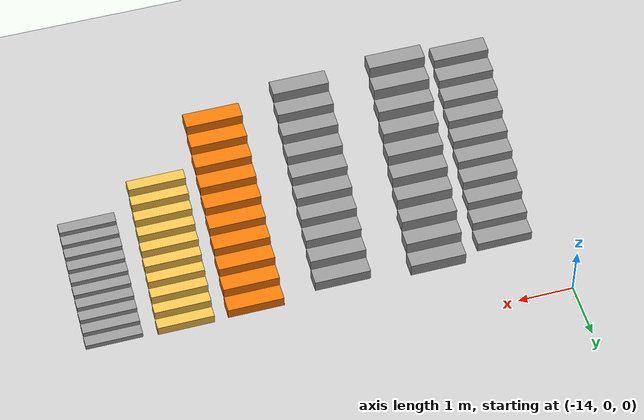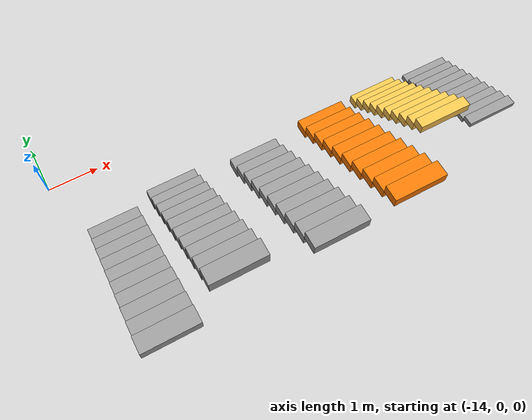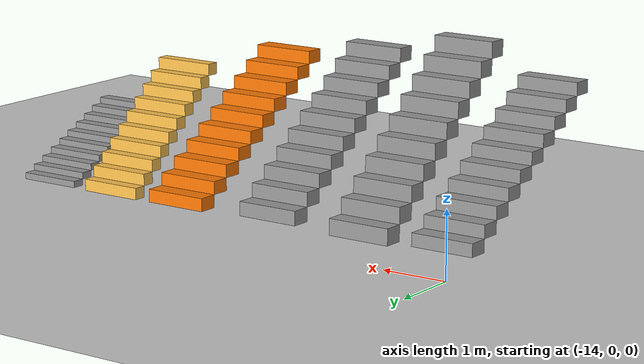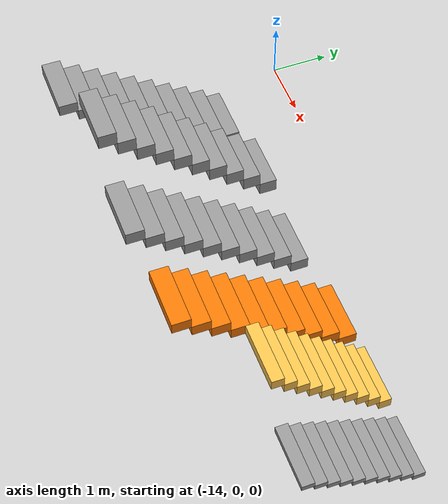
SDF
<sdf version="1.7">
 <world name="default">
  <model name="ground_plane">
   <static>1</static>
   <link name="link">
    <collision name="collision">
     <geometry><plane><normal>0 0 1</normal><size>100 100</size></plane></geometry>
     <surface>
      <contact><collide_bitmask>65535</collide_bitmask></contact>
      <friction><ode><mu>100</mu><mu2>50</mu2></ode></friction>
     </surface>
    </collision>
    <visual name="visual">
     <cast_shadows>0</cast_shadows>
     <geometry><plane><normal>0 0 1</normal><size>100 100</size></plane></geometry>
     <material>
      <script><uri>file://media/materials/scripts/gazebo.material</uri><name>Gazebo/Grey</name></script>
     </material>
    </visual>
   </link>
  </model>
  <model name="Untitled_0">
   <pose>-6.18408 -2.07983 0 0 -0 0</pose>
   <link name="Stairs_1">
    <visual name="Stairs_1_Visual_0">
     <pose>-2.38966 0.920514 0.1 0 -0 0</pose>
     <geometry><box><size>1 0.3 0.2</size></box></geometry>
     <material>
      <script><uri>file://media/materials/scripts/gazebo.material</uri><name>Gazebo/Grey</name></script>
      <ambient>0.996078 0.47451 0.0196078 1</ambient>
     </material>
     <meta><layer>0</layer></meta>
    </visual>
    <collision name="Stairs_1_Collision_0">
     <geometry><box><size>1 0.3 0.2</size></box></geometry>
     <pose>-2.38966 0.920514 0.1 0 -0 0</pose>
    </collision>
    <visual name="Stairs_1_Visual_1">
     <pose>-2.38966 0.620514 0.3 0 -0 0</pose>
     <geometry><box><size>1 0.3 0.2</size></box></geometry>
     <material>
      <script><uri>file://media/materials/scripts/gazebo.material</uri><name>Gazebo/Grey</name></script>
      <ambient>0.996078 0.47451 0.0196078 1</ambient>
     </material>
     <meta><layer>0</layer></meta>
    </visual>
    <collision name="Stairs_1_Collision_1">
     <geometry><box><size>1 0.3 0.2</size></box></geometry>
     <pose>-2.38966 0.620514 0.3 0 -0 0</pose>
    </collision>
    <visual name="Stairs_1_Visual_2">
     <pose>-2.38966 0.320514 0.5 0 -0 0</pose>
     <geometry><box><size>1 0.3 0.2</size></box></geometry>
     <material>
      <script><uri>file://media/materials/scripts/gazebo.material</uri><name>Gazebo/Grey</name></script>
      <ambient>0.996078 0.47451 0.0196078 1</ambient>
     </material>
     <meta><layer>0</layer></meta>
    </visual>
    <collision name="Stairs_1_Collision_2">
     <geometry><box><size>1 0.3 0.2</size></box></geometry>
     <pose>-2.38966 0.320514 0.5 0 -0 0</pose>
    </collision>
    <visual name="Stairs_1_Visual_3">
     <pose>-2.38966 0.020514 0.7 0 -0 0</pose>
     <geometry><box><size>1 0.3 0.2</size></box></geometry>
     <material>
      <script><uri>file://media/materials/scripts/gazebo.material</uri><name>Gazebo/Grey</name></script>
      <ambient>0.996078 0.47451 0.0196078 1</ambient>
     </material>
     <meta><layer>0</layer></meta>
    </visual>
    <collision name="Stairs_1_Collision_3">
     <geometry><box><size>1 0.3 0.2</size></box></geometry>
     <pose>-2.38966 0.020514 0.7 0 -0 0</pose>
    </collision>
    <visual name="Stairs_1_Visual_4">
     <pose>-2.38966 -0.279486 0.9 0 -0 0</pose>
     <geometry><box><size>1 0.3 0.2</size></box></geometry>
     <material>
      <script><uri>file://media/materials/scripts/gazebo.material</uri><name>Gazebo/Grey</name></script>
      <ambient>0.996078 0.47451 0.0196078 1</ambient>
     </material>
     <meta><layer>0</layer></meta>
    </visual>
    <collision name="Stairs_1_Collision_4">
     <geometry><box><size>1 0.3 0.2</size></box></geometry>
     <pose>-2.38966 -0.279486 0.9 0 -0 0</pose>
    </collision>
    <visual name="Stairs_1_Visual_5">
     <pose>-2.38966 -0.579486 1.1 0 -0 0</pose>
     <geometry><box><size>1 0.3 0.2</size></box></geometry>
     <material>
      <script><uri>file://media/materials/scripts/gazebo.material</uri><name>Gazebo/Grey</name></script>
      <ambient>0.996078 0.47451 0.0196078 1</ambient>
     </material>
     <meta><layer>0</layer></meta>
    </visual>
    <collision name="Stairs_1_Collision_5">
     <geometry><box><size>1 0.3 0.2</size></box></geometry>
     <pose>-2.38966 -0.579486 1.1 0 -0 0</pose>
    </collision>
    <visual name="Stairs_1_Visual_6">
     <pose>-2.38966 -0.879486 1.3 0 -0 0</pose>
     <geometry><box><size>1 0.3 0.2</size></box></geometry>
     <material>
      <script><uri>file://media/materials/scripts/gazebo.material</uri><name>Gazebo/Grey</name></script>
      <ambient>0.996078 0.47451 0.0196078 1</ambient>
     </material>
     <meta><layer>0</layer></meta>
    </visual>
    <collision name="Stairs_1_Collision_6">
     <geometry><box><size>1 0.3 0.2</size></box></geometry>
     <pose>-2.38966 -0.879486 1.3 0 -0 0</pose>
    </collision>
    <visual name="Stairs_1_Visual_7">
     <pose>-2.38966 -1.17949 1.5 0 -0 0</pose>
     <geometry><box><size>1 0.3 0.2</size></box></geometry>
     <material>
      <script><uri>file://media/materials/scripts/gazebo.material</uri><name>Gazebo/Grey</name></script>
      <ambient>0.996078 0.47451 0.0196078 1</ambient>
     </material>
     <meta><layer>0</layer></meta>
    </visual>
    <collision name="Stairs_1_Collision_7">
     <geometry><box><size>1 0.3 0.2</size></box></geometry>
     <pose>-2.38966 -1.17949 1.5 0 -0 0</pose>
    </collision>
    <visual name="Stairs_1_Visual_8">
     <pose>-2.38966 -1.47949 1.7 0 -0 0</pose>
     <geometry><box><size>1 0.3 0.2</size></box></geometry>
     <material>
      <script><uri>file://media/materials/scripts/gazebo.material</uri><name>Gazebo/Grey</name></script>
      <ambient>0.996078 0.47451 0.0196078 1</ambient>
     </material>
     <meta><layer>0</layer></meta>
    </visual>
    <collision name="Stairs_1_Collision_8">
     <geometry><box><size>1 0.3 0.2</size></box></geometry>
     <pose>-2.38966 -1.47949 1.7 0 -0 0</pose>
    </collision>
    <visual name="Stairs_1_Visual_9">
     <pose>-2.38966 -1.77949 1.9 0 -0 0</pose>
     <geometry><box><size>1 0.3 0.2</size></box></geometry>
     <material>
      <script><uri>file://media/materials/scripts/gazebo.material</uri><name>Gazebo/Grey</name></script>
      <ambient>0.996078 0.47451 0.0196078 1</ambient>
     </material>
     <meta><layer>0</layer></meta>
    </visual>
    <collision name="Stairs_1_Collision_9">
     <geometry><box><size>1 0.3 0.2</size></box></geometry>
     <pose>-2.38966 -1.77949 1.9 0 -0 0</pose>
    </collision>
   </link>
   <link name="Stairs_3">
    <visual name="Stairs_3_Visual_0">
     <pose>-1.14183 0.993353 0.09 0 -0 0</pose>
     <geometry><box><size>1 0.2 0.18</size></box></geometry>
     <material>
      <script><uri>file://media/materials/scripts/gazebo.material</uri><name>Gazebo/Grey</name></script>
      <ambient>1 0.764706 0.305882 1</ambient>
     </material>
     <meta><layer>0</layer></meta>
    </visual>
    <collision name="Stairs_3_Collision_0">
     <geometry><box><size>1 0.2 0.18</size></box></geometry>
     <pose>-1.14183 0.993353 0.09 0 -0 0</pose>
    </collision>
    <visual name="Stairs_3_Visual_1">
     <pose>-1.14183 0.793354 0.27 0 -0 0</pose>
     <geometry><box><size>1 0.2 0.18</size></box></geometry>
     <material>
      <script><uri>file://media/materials/scripts/gazebo.material</uri><name>Gazebo/Grey</name></script>
      <ambient>1 0.764706 0.305882 1</ambient>
     </material>
     <meta><layer>0</layer></meta>
    </visual>
    <collision name="Stairs_3_Collision_1">
     <geometry><box><size>1 0.2 0.18</size></box></geometry>
     <pose>-1.14183 0.793354 0.27 0 -0 0</pose>
    </collision>
    <visual name="Stairs_3_Visual_2">
     <pose>-1.14183 0.593354 0.45 0 -0 0</pose>
     <geometry><box><size>1 0.2 0.18</size></box></geometry>
     <material>
      <script><uri>file://media/materials/scripts/gazebo.material</uri><name>Gazebo/Grey</name></script>
      <ambient>1 0.764706 0.305882 1</ambient>
     </material>
     <meta><layer>0</layer></meta>
    </visual>
    <collision name="Stairs_3_Collision_2">
     <geometry><box><size>1 0.2 0.18</size></box></geometry>
     <pose>-1.14183 0.593354 0.45 0 -0 0</pose>
    </collision>
    <visual name="Stairs_3_Visual_3">
     <pose>-1.14183 0.393353 0.63 0 -0 0</pose>
     <geometry><box><size>1 0.2 0.18</size></box></geometry>
     <material>
      <script><uri>file://media/materials/scripts/gazebo.material</uri><name>Gazebo/Grey</name></script>
      <ambient>1 0.764706 0.305882 1</ambient>
     </material>
     <meta><layer>0</layer></meta>
    </visual>
    <collision name="Stairs_3_Collision_3">
     <geometry><box><size>1 0.2 0.18</size></box></geometry>
     <pose>-1.14183 0.393353 0.63 0 -0 0</pose>
    </collision>
    <visual name="Stairs_3_Visual_4">
     <pose>-1.14183 0.193354 0.81 0 -0 0</pose>
     <geometry><box><size>1 0.2 0.18</size></box></geometry>
     <material>
      <script><uri>file://media/materials/scripts/gazebo.material</uri><name>Gazebo/Grey</name></script>
      <ambient>1 0.764706 0.305882 1</ambient>
     </material>
     <meta><layer>0</layer></meta>
    </visual>
    <collision name="Stairs_3_Collision_4">
     <geometry><box><size>1 0.2 0.18</size></box></geometry>
     <pose>-1.14183 0.193354 0.81 0 -0 0</pose>
    </collision>
    <visual name="Stairs_3_Visual_5">
     <pose>-1.14183 -0.006646 0.99 0 -0 0</pose>
     <geometry><box><size>1 0.2 0.18</size></box></geometry>
     <material>
      <script><uri>file://media/materials/scripts/gazebo.material</uri><name>Gazebo/Grey</name></script>
      <ambient>1 0.764706 0.305882 1</ambient>
     </material>
     <meta><layer>0</layer></meta>
    </visual>
    <collision name="Stairs_3_Collision_5">
     <geometry><box><size>1 0.2 0.18</size></box></geometry>
     <pose>-1.14183 -0.006646 0.99 0 -0 0</pose>
    </collision>
    <visual name="Stairs_3_Visual_6">
     <pose>-1.14183 -0.206646 1.17 0 -0 0</pose>
     <geometry><box><size>1 0.2 0.18</size></box></geometry>
     <material>
      <script><uri>file://media/materials/scripts/gazebo.material</uri><name>Gazebo/Grey</name></script>
      <ambient>1 0.764706 0.305882 1</ambient>
     </material>
     <meta><layer>0</layer></meta>
    </visual>
    <collision name="Stairs_3_Collision_6">
     <geometry><box><size>1 0.2 0.18</size></box></geometry>
     <pose>-1.14183 -0.206646 1.17 0 -0 0</pose>
    </collision>
    <visual name="Stairs_3_Visual_7">
     <pose>-1.14183 -0.406646 1.35 0 -0 0</pose>
     <geometry><box><size>1 0.2 0.18</size></box></geometry>
     <material>
      <script><uri>file://media/materials/scripts/gazebo.material</uri><name>Gazebo/Grey</name></script>
      <ambient>1 0.764706 0.305882 1</ambient>
     </material>
     <meta><layer>0</layer></meta>
    </visual>
    <collision name="Stairs_3_Collision_7">
     <geometry><box><size>1 0.2 0.18</size></box></geometry>
     <pose>-1.14183 -0.406646 1.35 0 -0 0</pose>
    </collision>
    <visual name="Stairs_3_Visual_8">
     <pose>-1.14183 -0.606647 1.53 0 -0 0</pose>
     <geometry><box><size>1 0.2 0.18</size></box></geometry>
     <material>
      <script><uri>file://media/materials/scripts/gazebo.material</uri><name>Gazebo/Grey</name></script>
      <ambient>1 0.764706 0.305882 1</ambient>
     </material>
     <meta><layer>0</layer></meta>
    </visual>
    <collision name="Stairs_3_Collision_8">
     <geometry><box><size>1 0.2 0.18</size></box></geometry>
     <pose>-1.14183 -0.606647 1.53 0 -0 0</pose>
    </collision>
    <visual name="Stairs_3_Visual_9">
     <pose>-1.14183 -0.806647 1.71 0 -0 0</pose>
     <geometry><box><size>1 0.2 0.18</size></box></geometry>
     <material>
      <script><uri>file://media/materials/scripts/gazebo.material</uri><name>Gazebo/Grey</name></script>
      <ambient>1 0.764706 0.305882 1</ambient>
     </material>
     <meta><layer>0</layer></meta>
    </visual>
    <collision name="Stairs_3_Collision_9">
     <geometry><box><size>1 0.2 0.18</size></box></geometry>
     <pose>-1.14183 -0.806647 1.71 0 -0 0</pose>
    </collision>
   </link>
   <link name="Stairs_5">
    <visual name="Stairs_5_Visual_0">
     <pose>-5.68408 0.898691 0.125 0 -0 0</pose>
     <geometry><box><size>1 0.3 0.25</size></box></geometry>
     <material>
      <script><uri>file://media/materials/scripts/gazebo.material</uri><name>Gazebo/Grey</name></script>
      <ambient>1 1 1 1</ambient>
     </material>
     <meta><layer>0</layer></meta>
    </visual>
    <collision name="Stairs_5_Collision_0">
     <geometry><box><size>1 0.3 0.25</size></box></geometry>
     <pose>-5.68408 0.898691 0.125 0 -0 0</pose>
    </collision>
    <visual name="Stairs_5_Visual_1">
     <pose>-5.68408 0.598691 0.375 0 -0 0</pose>
     <geometry><box><size>1 0.3 0.25</size></box></geometry>
     <material>
      <script><uri>file://media/materials/scripts/gazebo.material</uri><name>Gazebo/Grey</name></script>
      <ambient>1 1 1 1</ambient>
     </material>
     <meta><layer>0</layer></meta>
    </visual>
    <collision name="Stairs_5_Collision_1">
     <geometry><box><size>1 0.3 0.25</size></box></geometry>
     <pose>-5.68408 0.598691 0.375 0 -0 0</pose>
    </collision>
    <visual name="Stairs_5_Visual_2">
     <pose>-5.68408 0.298692 0.625 0 -0 0</pose>
     <geometry><box><size>1 0.3 0.25</size></box></geometry>
     <material>
      <script><uri>file://media/materials/scripts/gazebo.material</uri><name>Gazebo/Grey</name></script>
      <ambient>1 1 1 1</ambient>
     </material>
     <meta><layer>0</layer></meta>
    </visual>
    <collision name="Stairs_5_Collision_2">
     <geometry><box><size>1 0.3 0.25</size></box></geometry>
     <pose>-5.68408 0.298692 0.625 0 -0 0</pose>
    </collision>
    <visual name="Stairs_5_Visual_3">
     <pose>-5.68408 -0.001308 0.875 0 -0 0</pose>
     <geometry><box><size>1 0.3 0.25</size></box></geometry>
     <material>
      <script><uri>file://media/materials/scripts/gazebo.material</uri><name>Gazebo/Grey</name></script>
      <ambient>1 1 1 1</ambient>
     </material>
     <meta><layer>0</layer></meta>
    </visual>
    <collision name="Stairs_5_Collision_3">
     <geometry><box><size>1 0.3 0.25</size></box></geometry>
     <pose>-5.68408 -0.001308 0.875 0 -0 0</pose>
    </collision>
    <visual name="Stairs_5_Visual_4">
     <pose>-5.68408 -0.301308 1.125 0 -0 0</pose>
     <geometry><box><size>1 0.3 0.25</size></box></geometry>
     <material>
      <script><uri>file://media/materials/scripts/gazebo.material</uri><name>Gazebo/Grey</name></script>
      <ambient>1 1 1 1</ambient>
     </material>
     <meta><layer>0</layer></meta>
    </visual>
    <collision name="Stairs_5_Collision_4">
     <geometry><box><size>1 0.3 0.25</size></box></geometry>
     <pose>-5.68408 -0.301308 1.125 0 -0 0</pose>
    </collision>
    <visual name="Stairs_5_Visual_5">
     <pose>-5.68408 -0.601309 1.375 0 -0 0</pose>
     <geometry><box><size>1 0.3 0.25</size></box></geometry>
     <material>
      <script><uri>file://media/materials/scripts/gazebo.material</uri><name>Gazebo/Grey</name></script>
      <ambient>1 1 1 1</ambient>
     </material>
     <meta><layer>0</layer></meta>
    </visual>
    <collision name="Stairs_5_Collision_5">
     <geometry><box><size>1 0.3 0.25</size></box></geometry>
     <pose>-5.68408 -0.601309 1.375 0 -0 0</pose>
    </collision>
    <visual name="Stairs_5_Visual_6">
     <pose>-5.68408 -0.901309 1.625 0 -0 0</pose>
     <geometry><box><size>1 0.3 0.25</size></box></geometry>
     <material>
      <script><uri>file://media/materials/scripts/gazebo.material</uri><name>Gazebo/Grey</name></script>
      <ambient>1 1 1 1</ambient>
     </material>
     <meta><layer>0</layer></meta>
    </visual>
    <collision name="Stairs_5_Collision_6">
     <geometry><box><size>1 0.3 0.25</size></box></geometry>
     <pose>-5.68408 -0.901309 1.625 0 -0 0</pose>
    </collision>
    <visual name="Stairs_5_Visual_7">
     <pose>-5.68408 -1.20131 1.875 0 -0 0</pose>
     <geometry><box><size>1 0.3 0.25</size></box></geometry>
     <material>
      <script><uri>file://media/materials/scripts/gazebo.material</uri><name>Gazebo/Grey</name></script>
      <ambient>1 1 1 1</ambient>
     </material>
     <meta><layer>0</layer></meta>
    </visual>
    <collision name="Stairs_5_Collision_7">
     <geometry><box><size>1 0.3 0.25</size></box></geometry>
     <pose>-5.68408 -1.20131 1.875 0 -0 0</pose>
    </collision>
    <visual name="Stairs_5_Visual_8">
     <pose>-5.68408 -1.50131 2.125 0 -0 0</pose>
     <geometry><box><size>1 0.3 0.25</size></box></geometry>
     <material>
      <script><uri>file://media/materials/scripts/gazebo.material</uri><name>Gazebo/Grey</name></script>
      <ambient>1 1 1 1</ambient>
     </material>
     <meta><layer>0</layer></meta>
    </visual>
    <collision name="Stairs_5_Collision_8">
     <geometry><box><size>1 0.3 0.25</size></box></geometry>
     <pose>-5.68408 -1.50131 2.125 0 -0 0</pose>
    </collision>
    <visual name="Stairs_5_Visual_9">
     <pose>-5.68408 -1.80131 2.375 0 -0 0</pose>
     <geometry><box><size>1 0.3 0.25</size></box></geometry>
     <material>
      <script><uri>file://media/materials/scripts/gazebo.material</uri><name>Gazebo/Grey</name></script>
      <ambient>1 1 1 1</ambient>
     </material>
     <meta><layer>0</layer></meta>
    </visual>
    <collision name="Stairs_5_Collision_9">
     <geometry><box><size>1 0.3 0.25</size></box></geometry>
     <pose>-5.68408 -1.80131 2.375 0 -0 0</pose>
    </collision>
   </link>
   <link name="Stairs_7">
    <visual name="Stairs_7_Visual_0">
     <pose>0.116209 0.963801 0.05 0 -0 0</pose>
     <geometry><box><size>1 0.2 0.1</size></box></geometry>
     <material>
      <script><uri>file://media/materials/scripts/gazebo.material</uri><name>Gazebo/Grey</name></script>
      <ambient>1 1 1 1</ambient>
     </material>
     <meta><layer>0</layer></meta>
    </visual>
    <collision name="Stairs_7_Collision_0">
     <geometry><box><size>1 0.2 0.1</size></box></geometry>
     <pose>0.116209 0.963801 0.05 0 -0 0</pose>
    </collision>
    <visual name="Stairs_7_Visual_1">
     <pose>0.116209 0.763801 0.15 0 -0 0</pose>
     <geometry><box><size>1 0.2 0.1</size></box></geometry>
     <material>
      <script><uri>file://media/materials/scripts/gazebo.material</uri><name>Gazebo/Grey</name></script>
      <ambient>1 1 1 1</ambient>
     </material>
     <meta><layer>0</layer></meta>
    </visual>
    <collision name="Stairs_7_Collision_1">
     <geometry><box><size>1 0.2 0.1</size></box></geometry>
     <pose>0.116209 0.763801 0.15 0 -0 0</pose>
    </collision>
    <visual name="Stairs_7_Visual_2">
     <pose>0.116209 0.563801 0.25 0 -0 0</pose>
     <geometry><box><size>1 0.2 0.1</size></box></geometry>
     <material>
      <script><uri>file://media/materials/scripts/gazebo.material</uri><name>Gazebo/Grey</name></script>
      <ambient>1 1 1 1</ambient>
     </material>
     <meta><layer>0</layer></meta>
    </visual>
    <collision name="Stairs_7_Collision_2">
     <geometry><box><size>1 0.2 0.1</size></box></geometry>
     <pose>0.116209 0.563801 0.25 0 -0 0</pose>
    </collision>
    <visual name="Stairs_7_Visual_3">
     <pose>0.116209 0.363801 0.35 0 -0 0</pose>
     <geometry><box><size>1 0.2 0.1</size></box></geometry>
     <material>
      <script><uri>file://media/materials/scripts/gazebo.material</uri><name>Gazebo/Grey</name></script>
      <ambient>1 1 1 1</ambient>
     </material>
     <meta><layer>0</layer></meta>
    </visual>
    <collision name="Stairs_7_Collision_3">
     <geometry><box><size>1 0.2 0.1</size></box></geometry>
     <pose>0.116209 0.363801 0.35 0 -0 0</pose>
    </collision>
    <visual name="Stairs_7_Visual_4">
     <pose>0.116209 0.163801 0.45 0 -0 0</pose>
     <geometry><box><size>1 0.2 0.1</size></box></geometry>
     <material>
      <script><uri>file://media/materials/scripts/gazebo.material</uri><name>Gazebo/Grey</name></script>
      <ambient>1 1 1 1</ambient>
     </material>
     <meta><layer>0</layer></meta>
    </visual>
    <collision name="Stairs_7_Collision_4">
     <geometry><box><size>1 0.2 0.1</size></box></geometry>
     <pose>0.116209 0.163801 0.45 0 -0 0</pose>
    </collision>
    <visual name="Stairs_7_Visual_5">
     <pose>0.116209 -0.036199 0.55 0 -0 0</pose>
     <geometry><box><size>1 0.2 0.1</size></box></geometry>
     <material>
      <script><uri>file://media/materials/scripts/gazebo.material</uri><name>Gazebo/Grey</name></script>
      <ambient>1 1 1 1</ambient>
     </material>
     <meta><layer>0</layer></meta>
    </visual>
    <collision name="Stairs_7_Collision_5">
     <geometry><box><size>1 0.2 0.1</size></box></geometry>
     <pose>0.116209 -0.036199 0.55 0 -0 0</pose>
    </collision>
    <visual name="Stairs_7_Visual_6">
     <pose>0.116209 -0.236199 0.65 0 -0 0</pose>
     <geometry><box><size>1 0.2 0.1</size></box></geometry>
     <material>
      <script><uri>file://media/materials/scripts/gazebo.material</uri><name>Gazebo/Grey</name></script>
      <ambient>1 1 1 1</ambient>
     </material>
     <meta><layer>0</layer></meta>
    </visual>
    <collision name="Stairs_7_Collision_6">
     <geometry><box><size>1 0.2 0.1</size></box></geometry>
     <pose>0.116209 -0.236199 0.65 0 -0 0</pose>
    </collision>
    <visual name="Stairs_7_Visual_7">
     <pose>0.116209 -0.436199 0.75 0 -0 0</pose>
     <geometry><box><size>1 0.2 0.1</size></box></geometry>
     <material>
      <script><uri>file://media/materials/scripts/gazebo.material</uri><name>Gazebo/Grey</name></script>
      <ambient>1 1 1 1</ambient>
     </material>
     <meta><layer>0</layer></meta>
    </visual>
    <collision name="Stairs_7_Collision_7">
     <geometry><box><size>1 0.2 0.1</size></box></geometry>
     <pose>0.116209 -0.436199 0.75 0 -0 0</pose>
    </collision>
    <visual name="Stairs_7_Visual_8">
     <pose>0.116209 -0.636199 0.85 0 -0 0</pose>
     <geometry><box><size>1 0.2 0.1</size></box></geometry>
     <material>
      <script><uri>file://media/materials/scripts/gazebo.material</uri><name>Gazebo/Grey</name></script>
      <ambient>1 1 1 1</ambient>
     </material>
     <meta><layer>0</layer></meta>
    </visual>
    <collision name="Stairs_7_Collision_8">
     <geometry><box><size>1 0.2 0.1</size></box></geometry>
     <pose>0.116209 -0.636199 0.85 0 -0 0</pose>
    </collision>
    <visual name="Stairs_7_Visual_9">
     <pose>0.116209 -0.836199 0.95 0 -0 0</pose>
     <geometry><box><size>1 0.2 0.1</size></box></geometry>
     <material>
      <script><uri>file://media/materials/scripts/gazebo.material</uri><name>Gazebo/Grey</name></script>
      <ambient>1 1 1 1</ambient>
     </material>
     <meta><layer>0</layer></meta>
    </visual>
    <collision name="Stairs_7_Collision_9">
     <geometry><box><size>1 0.2 0.1</size></box></geometry>
     <pose>0.116209 -0.836199 0.95 0 -0 0</pose>
    </collision>
   </link>
   <link name="Stairs_9">
    <visual name="Stairs_9_Visual_0">
     <pose>-3.98696 0.770167 0.11 0 -0 0</pose>
     <geometry><box><size>1 0.3 0.22</size></box></geometry>
     <material>
      <script><uri>file://media/materials/scripts/gazebo.material</uri><name>Gazebo/Grey</name></script>
      <ambient>1 1 1 1</ambient>
     </material>
     <meta><layer>0</layer></meta>
    </visual>
    <collision name="Stairs_9_Collision_0">
     <geometry><box><size>1 0.3 0.22</size></box></geometry>
     <pose>-3.98696 0.770167 0.11 0 -0 0</pose>
    </collision>
    <visual name="Stairs_9_Visual_1">
     <pose>-3.98696 0.470167 0.33 0 -0 0</pose>
     <geometry><box><size>1 0.3 0.22</size></box></geometry>
     <material>
      <script><uri>file://media/materials/scripts/gazebo.material</uri><name>Gazebo/Grey</name></script>
      <ambient>1 1 1 1</ambient>
     </material>
     <meta><layer>0</layer></meta>
    </visual>
    <collision name="Stairs_9_Collision_1">
     <geometry><box><size>1 0.3 0.22</size></box></geometry>
     <pose>-3.98696 0.470167 0.33 0 -0 0</pose>
    </collision>
    <visual name="Stairs_9_Visual_2">
     <pose>-3.98696 0.170167 0.55 0 -0 0</pose>
     <geometry><box><size>1 0.3 0.22</size></box></geometry>
     <material>
      <script><uri>file://media/materials/scripts/gazebo.material</uri><name>Gazebo/Grey</name></script>
      <ambient>1 1 1 1</ambient>
     </material>
     <meta><layer>0</layer></meta>
    </visual>
    <collision name="Stairs_9_Collision_2">
     <geometry><box><size>1 0.3 0.22</size></box></geometry>
     <pose>-3.98696 0.170167 0.55 0 -0 0</pose>
    </collision>
    <visual name="Stairs_9_Visual_3">
     <pose>-3.98696 -0.129833 0.77 0 -0 0</pose>
     <geometry><box><size>1 0.3 0.22</size></box></geometry>
     <material>
      <script><uri>file://media/materials/scripts/gazebo.material</uri><name>Gazebo/Grey</name></script>
      <ambient>1 1 1 1</ambient>
     </material>
     <meta><layer>0</layer></meta>
    </visual>
    <collision name="Stairs_9_Collision_3">
     <geometry><box><size>1 0.3 0.22</size></box></geometry>
     <pose>-3.98696 -0.129833 0.77 0 -0 0</pose>
    </collision>
    <visual name="Stairs_9_Visual_4">
     <pose>-3.98696 -0.429833 0.99 0 -0 0</pose>
     <geometry><box><size>1 0.3 0.22</size></box></geometry>
     <material>
      <script><uri>file://media/materials/scripts/gazebo.material</uri><name>Gazebo/Grey</name></script>
      <ambient>1 1 1 1</ambient>
     </material>
     <meta><layer>0</layer></meta>
    </visual>
    <collision name="Stairs_9_Collision_4">
     <geometry><box><size>1 0.3 0.22</size></box></geometry>
     <pose>-3.98696 -0.429833 0.99 0 -0 0</pose>
    </collision>
    <visual name="Stairs_9_Visual_5">
     <pose>-3.98696 -0.729833 1.21 0 -0 0</pose>
     <geometry><box><size>1 0.3 0.22</size></box></geometry>
     <material>
      <script><uri>file://media/materials/scripts/gazebo.material</uri><name>Gazebo/Grey</name></script>
      <ambient>1 1 1 1</ambient>
     </material>
     <meta><layer>0</layer></meta>
    </visual>
    <collision name="Stairs_9_Collision_5">
     <geometry><box><size>1 0.3 0.22</size></box></geometry>
     <pose>-3.98696 -0.729833 1.21 0 -0 0</pose>
    </collision>
    <visual name="Stairs_9_Visual_6">
     <pose>-3.98696 -1.02983 1.43 0 -0 0</pose>
     <geometry><box><size>1 0.3 0.22</size></box></geometry>
     <material>
      <script><uri>file://media/materials/scripts/gazebo.material</uri><name>Gazebo/Grey</name></script>
      <ambient>1 1 1 1</ambient>
     </material>
     <meta><layer>0</layer></meta>
    </visual>
    <collision name="Stairs_9_Collision_6">
     <geometry><box><size>1 0.3 0.22</size></box></geometry>
     <pose>-3.98696 -1.02983 1.43 0 -0 0</pose>
    </collision>
    <visual name="Stairs_9_Visual_7">
     <pose>-3.98696 -1.32983 1.65 0 -0 0</pose>
     <geometry><box><size>1 0.3 0.22</size></box></geometry>
     <material>
      <script><uri>file://media/materials/scripts/gazebo.material</uri><name>Gazebo/Grey</name></script>
      <ambient>1 1 1 1</ambient>
     </material>
     <meta><layer>0</layer></meta>
    </visual>
    <collision name="Stairs_9_Collision_7">
     <geometry><box><size>1 0.3 0.22</size></box></geometry>
     <pose>-3.98696 -1.32983 1.65 0 -0 0</pose>
    </collision>
    <visual name="Stairs_9_Visual_8">
     <pose>-3.98696 -1.62983 1.87 0 -0 0</pose>
     <geometry><box><size>1 0.3 0.22</size></box></geometry>
     <material>
      <script><uri>file://media/materials/scripts/gazebo.material</uri><name>Gazebo/Grey</name></script>
      <ambient>1 1 1 1</ambient>
     </material>
     <meta><layer>0</layer></meta>
    </visual>
    <collision name="Stairs_9_Collision_8">
     <geometry><box><size>1 0.3 0.22</size></box></geometry>
     <pose>-3.98696 -1.62983 1.87 0 -0 0</pose>
    </collision>
    <visual name="Stairs_9_Visual_9">
     <pose>-3.98696 -1.92983 2.09 0 -0 0</pose>
     <geometry><box><size>1 0.3 0.22</size></box></geometry>
     <material>
      <script><uri>file://media/materials/scripts/gazebo.material</uri><name>Gazebo/Grey</name></script>
      <ambient>1 1 1 1</ambient>
     </material>
     <meta><layer>0</layer></meta>
    </visual>
    <collision name="Stairs_9_Collision_9">
     <geometry><box><size>1 0.3 0.22</size></box></geometry>
     <pose>-3.98696 -1.92983 2.09 0 -0 0</pose>
    </collision>
   </link>
   <static>1</static>
  </model>
  <model name="Untitled_1">
   <pose>-6.82251 -2.15995 0 0 -0 0</pose>
   <link name="Stairs_1">
    <visual name="Stairs_1_Visual_0">
     <pose>-6.32251 0.78505 0.1 0 -0 0</pose>
     <geometry><box><size>1 0.31 0.2</size></box></geometry>
     <material>
      <script><uri>file://media/materials/scripts/gazebo.material</uri><name>Gazebo/Grey</name></script>
      <ambient>1 1 1 1</ambient>
     </material>
     <meta><layer>0</layer></meta>
    </visual>
    <collision name="Stairs_1_Collision_0">
     <geometry><box><size>1 0.31 0.2</size></box></geometry>
     <pose>-6.32251 0.78505 0.1 0 -0 0</pose>
    </collision>
    <visual name="Stairs_1_Visual_1">
     <pose>-6.32251 0.47505 0.3 0 -0 0</pose>
     <geometry><box><size>1 0.31 0.2</size></box></geometry>
     <material>
      <script><uri>file://media/materials/scripts/gazebo.material</uri><name>Gazebo/Grey</name></script>
      <ambient>1 1 1 1</ambient>
     </material>
     <meta><layer>0</layer></meta>
    </visual>
    <collision name="Stairs_1_Collision_1">
     <geometry><box><size>1 0.31 0.2</size></box></geometry>
     <pose>-6.32251 0.47505 0.3 0 -0 0</pose>
    </collision>
    <visual name="Stairs_1_Visual_2">
     <pose>-6.32251 0.16505 0.5 0 -0 0</pose>
     <geometry><box><size>1 0.31 0.2</size></box></geometry>
     <material>
      <script><uri>file://media/materials/scripts/gazebo.material</uri><name>Gazebo/Grey</name></script>
      <ambient>1 1 1 1</ambient>
     </material>
     <meta><layer>0</layer></meta>
    </visual>
    <collision name="Stairs_1_Collision_2">
     <geometry><box><size>1 0.31 0.2</size></box></geometry>
     <pose>-6.32251 0.16505 0.5 0 -0 0</pose>
    </collision>
    <visual name="Stairs_1_Visual_3">
     <pose>-6.32251 -0.14495 0.7 0 -0 0</pose>
     <geometry><box><size>1 0.31 0.2</size></box></geometry>
     <material>
      <script><uri>file://media/materials/scripts/gazebo.material</uri><name>Gazebo/Grey</name></script>
      <ambient>1 1 1 1</ambient>
     </material>
     <meta><layer>0</layer></meta>
    </visual>
    <collision name="Stairs_1_Collision_3">
     <geometry><box><size>1 0.31 0.2</size></box></geometry>
     <pose>-6.32251 -0.14495 0.7 0 -0 0</pose>
    </collision>
    <visual name="Stairs_1_Visual_4">
     <pose>-6.32251 -0.45495 0.9 0 -0 0</pose>
     <geometry><box><size>1 0.31 0.2</size></box></geometry>
     <material>
      <script><uri>file://media/materials/scripts/gazebo.material</uri><name>Gazebo/Grey</name></script>
      <ambient>1 1 1 1</ambient>
     </material>
     <meta><layer>0</layer></meta>
    </visual>
    <collision name="Stairs_1_Collision_4">
     <geometry><box><size>1 0.31 0.2</size></box></geometry>
     <pose>-6.32251 -0.45495 0.9 0 -0 0</pose>
    </collision>
    <visual name="Stairs_1_Visual_5">
     <pose>-6.32251 -0.76495 1.1 0 -0 0</pose>
     <geometry><box><size>1 0.31 0.2</size></box></geometry>
     <material>
      <script><uri>file://media/materials/scripts/gazebo.material</uri><name>Gazebo/Grey</name></script>
      <ambient>1 1 1 1</ambient>
     </material>
     <meta><layer>0</layer></meta>
    </visual>
    <collision name="Stairs_1_Collision_5">
     <geometry><box><size>1 0.31 0.2</size></box></geometry>
     <pose>-6.32251 -0.76495 1.1 0 -0 0</pose>
    </collision>
    <visual name="Stairs_1_Visual_6">
     <pose>-6.32251 -1.07495 1.3 0 -0 0</pose>
     <geometry><box><size>1 0.31 0.2</size></box></geometry>
     <material>
      <script><uri>file://media/materials/scripts/gazebo.material</uri><name>Gazebo/Grey</name></script>
      <ambient>1 1 1 1</ambient>
     </material>
     <meta><layer>0</layer></meta>
    </visual>
    <collision name="Stairs_1_Collision_6">
     <geometry><box><size>1 0.31 0.2</size></box></geometry>
     <pose>-6.32251 -1.07495 1.3 0 -0 0</pose>
    </collision>
    <visual name="Stairs_1_Visual_7">
     <pose>-6.32251 -1.38495 1.5 0 -0 0</pose>
     <geometry><box><size>1 0.31 0.2</size></box></geometry>
     <material>
      <script><uri>file://media/materials/scripts/gazebo.material</uri><name>Gazebo/Grey</name></script>
      <ambient>1 1 1 1</ambient>
     </material>
     <meta><layer>0</layer></meta>
    </visual>
    <collision name="Stairs_1_Collision_7">
     <geometry><box><size>1 0.31 0.2</size></box></geometry>
     <pose>-6.32251 -1.38495 1.5 0 -0 0</pose>
    </collision>
    <visual name="Stairs_1_Visual_8">
     <pose>-6.32251 -1.69495 1.7 0 -0 0</pose>
     <geometry><box><size>1 0.31 0.2</size></box></geometry>
     <material>
      <script><uri>file://media/materials/scripts/gazebo.material</uri><name>Gazebo/Grey</name></script>
      <ambient>1 1 1 1</ambient>
     </material>
     <meta><layer>0</layer></meta>
    </visual>
    <collision name="Stairs_1_Collision_8">
     <geometry><box><size>1 0.31 0.2</size></box></geometry>
     <pose>-6.32251 -1.69495 1.7 0 -0 0</pose>
    </collision>
    <visual name="Stairs_1_Visual_9">
     <pose>-6.32251 -2.00495 1.9 0 -0 0</pose>
     <geometry><box><size>1 0.31 0.2</size></box></geometry>
     <material>
      <script><uri>file://media/materials/scripts/gazebo.material</uri><name>Gazebo/Grey</name></script>
      <ambient>1 1 1 1</ambient>
     </material>
     <meta><layer>0</layer></meta>
    </visual>
    <collision name="Stairs_1_Collision_9">
     <geometry><box><size>1 0.31 0.2</size></box></geometry>
     <pose>-6.32251 -2.00495 1.9 0 -0 0</pose>
    </collision>
   </link>
   <static>1</static>
  </model>
 </world>
</sdf>
